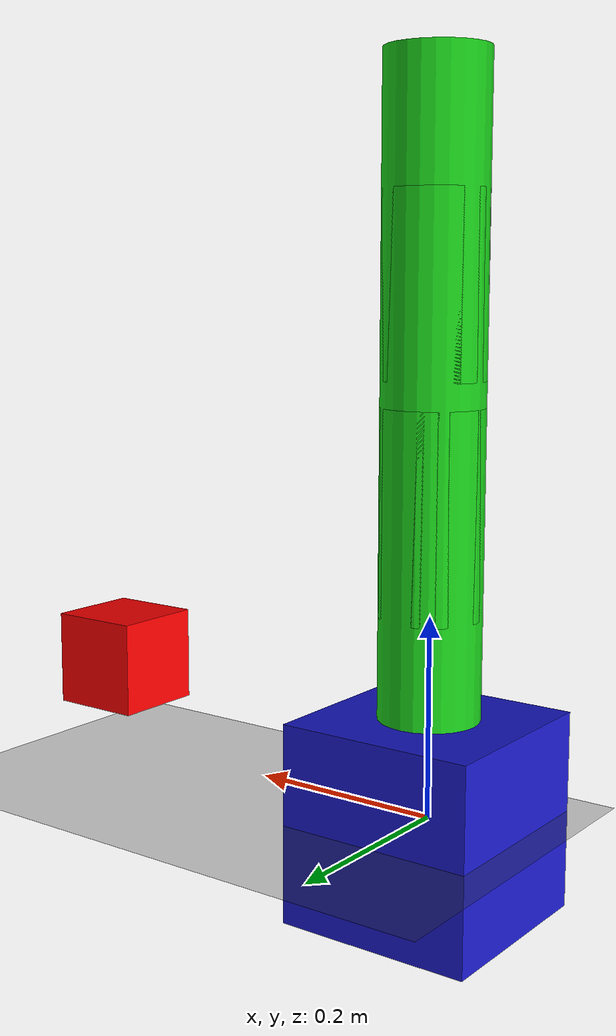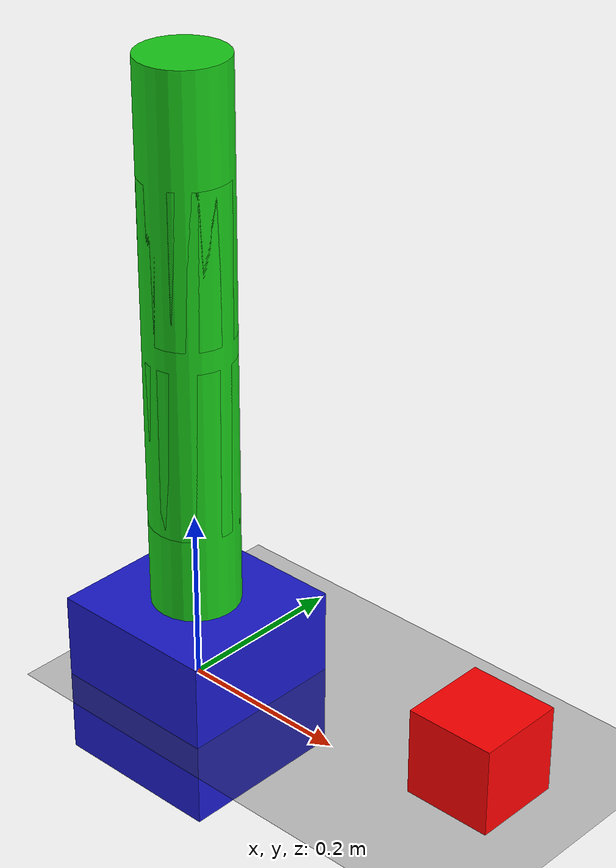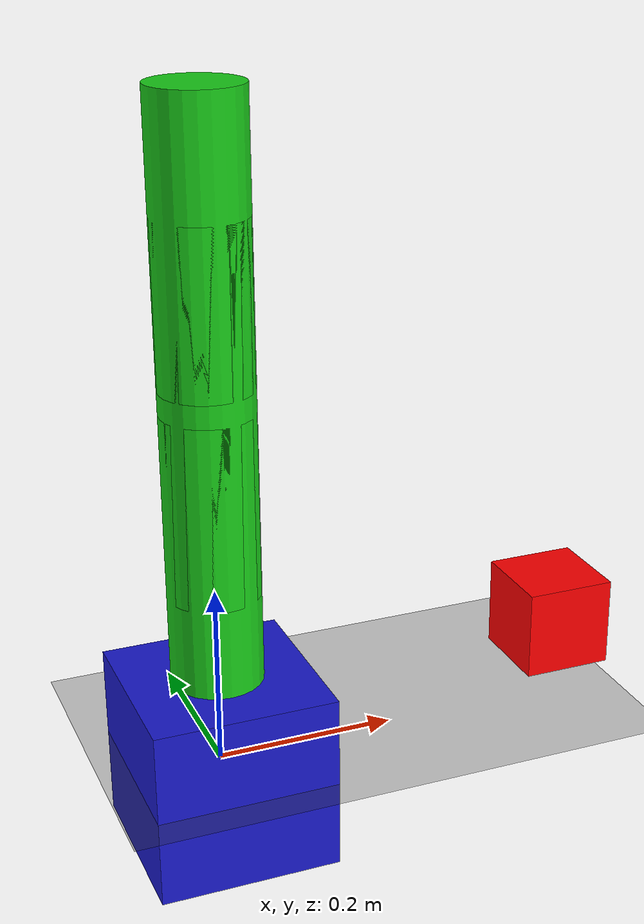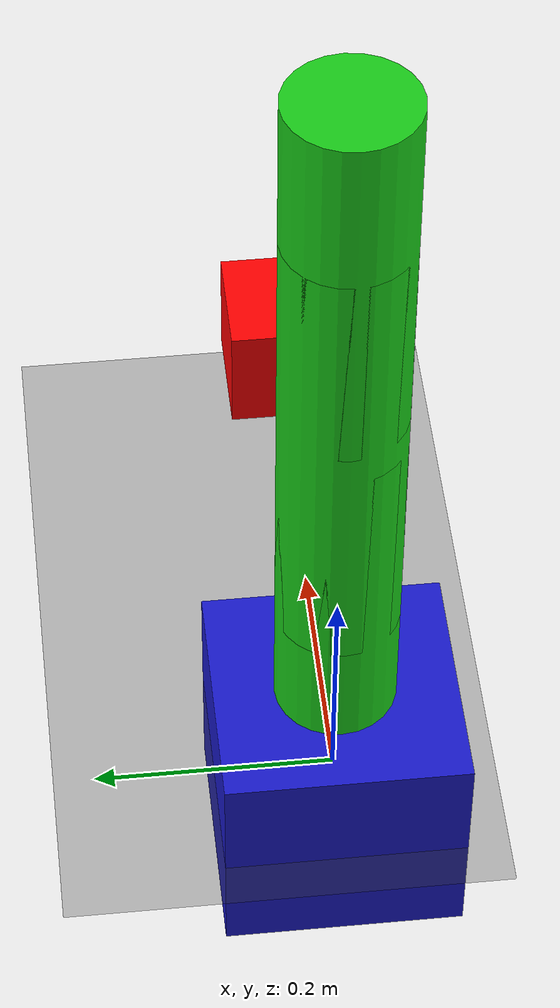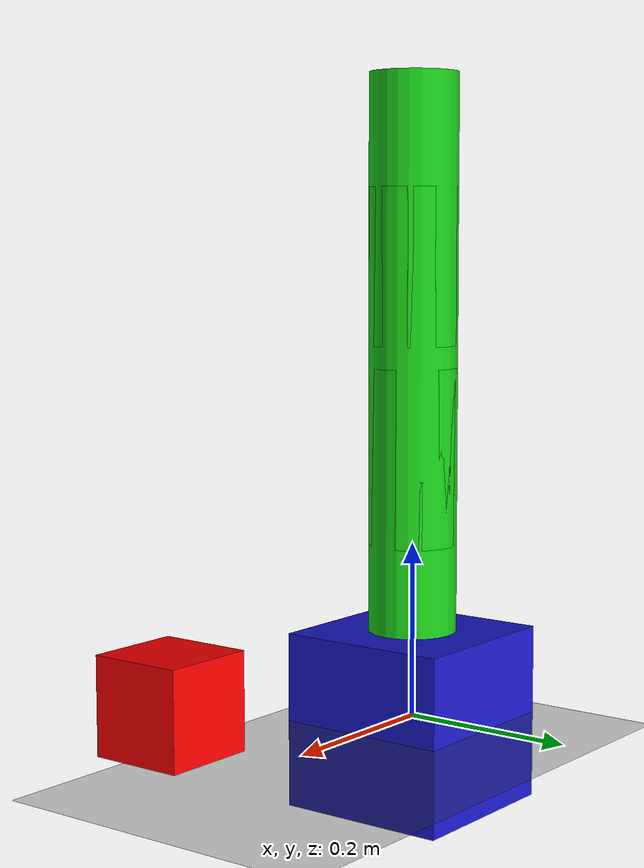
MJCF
<?xml version="1.0" encoding="UTF-8"?>
<mujoco model="simple_arm">
  <!-- 全局配置（MuJoCo 标准属性） -->
  <option timestep="0.001" integrator="RK4"/>
  <compiler angle="radian" inertiafromgeom="true"/>

  <default>
    <joint armature="0.1" damping="0.1" frictionloss="0.01"/>
    <geom contype="1" conaffinity="1" rgba="0.8 0.6 0.4 1"/>
  </default>

  <!-- 世界体：地面 + 机械臂 + 目标物体 -->
  <worldbody>
    <!-- 地面 -->
    <geom name="floor" type="plane" size="10 10 0.1" pos="0 0 0" rgba="0.2 0.2 0.2 1"/>

    <!-- 机械臂基座 -->
    <body name="base" pos="0 0 0">
      <geom name="base_geom" type="box" size="0.1 0.1 0.1" pos="0 0 0" rgba="0.1 0.1 0.8 1"/>

      <!-- 关节1（绕Z轴旋转） -->
      <joint name="joint1" type="hinge" axis="0 0 1" pos="0 0 0.1"/>
      <body name="link1" pos="0 0 0.1">
        <geom name="link1_geom" type="cylinder" size="0.05 0.2" pos="0 0 0.1" rgba="0.1 0.8 0.1 1"/>

        <!-- 关节2（绕Y轴旋转） -->
        <joint name="joint2" type="hinge" axis="0 1 0" pos="0 0 0.2"/>
        <body name="link2" pos="0 0 0.2">
          <geom name="link2_geom" type="cylinder" size="0.05 0.2" pos="0 0 0.1" rgba="0.1 0.8 0.1 1"/>

          <!-- 关节3（绕Y轴旋转） -->
          <joint name="joint3" type="hinge" axis="0 1 0" pos="0 0 0.2"/>
          <body name="link3" pos="0 0 0.2">
            <geom name="link3_geom" type="cylinder" size="0.05 0.15" pos="0 0 0.075" rgba="0.1 0.8 0.1 1"/>

            <!-- 末端执行器（夹爪） -->
            <body name="ee" pos="0 0 0.15">
              <site name="ee_site" pos="0 0 0" size="0.01"/>

              <!-- 左夹爪 -->
              <body name="gripper_left" pos="0.02 0 0">
                <joint name="gripper_left_joint" type="slide" axis="1 0 0" pos="0 0 0" range="-0.02 0"/>
                <geom name="gripper_left_geom" type="box" size="0.02 0.01 0.01" pos="0 0 0" rgba="0.8 0.1 0.1 1"/>
              </body>

              <!-- 右夹爪 -->
              <body name="gripper_right" pos="-0.02 0 0">
                <joint name="gripper_right_joint" type="slide" axis="1 0 0" pos="0 0 0" range="0 0.02"/>
                <geom name="gripper_right_geom" type="box" size="0.02 0.01 0.01" pos="0 0 0" rgba="0.8 0.1 0.1 1"/>
              </body>
            </body>
          </body>
        </body>
      </body>
    </body>

    <!-- 待抓取的目标物体 -->
    <body name="target_object" pos="0.4 0 0.1">
      <geom name="target_geom" type="box" size="0.05 0.05 0.05" pos="0 0 0" rgba="1 0 0 1"/>
      <freejoint name="object_joint"/>
    </body>
  </worldbody>

  <!-- 执行器：控制关节和夹爪 -->
  <actuator>
    <motor name="joint1_motor" joint="joint1" ctrlrange="-3.14 3.14" gear="100"/>
    <motor name="joint2_motor" joint="joint2" ctrlrange="-1.57 1.57" gear="100"/>
    <motor name="joint3_motor" joint="joint3" ctrlrange="-1.57 1.57" gear="100"/>
    <motor name="gripper_left_motor" joint="gripper_left_joint" ctrlrange="-10 10" gear="50"/>
    <motor name="gripper_right_motor" joint="gripper_right_joint" ctrlrange="-10 10" gear="50"/>
  </actuator>

  <!-- 传感器：检测末端力 -->
  <sensor>
    <force name="ee_force" site="ee_site"/>
  </sensor>
</mujoco>
